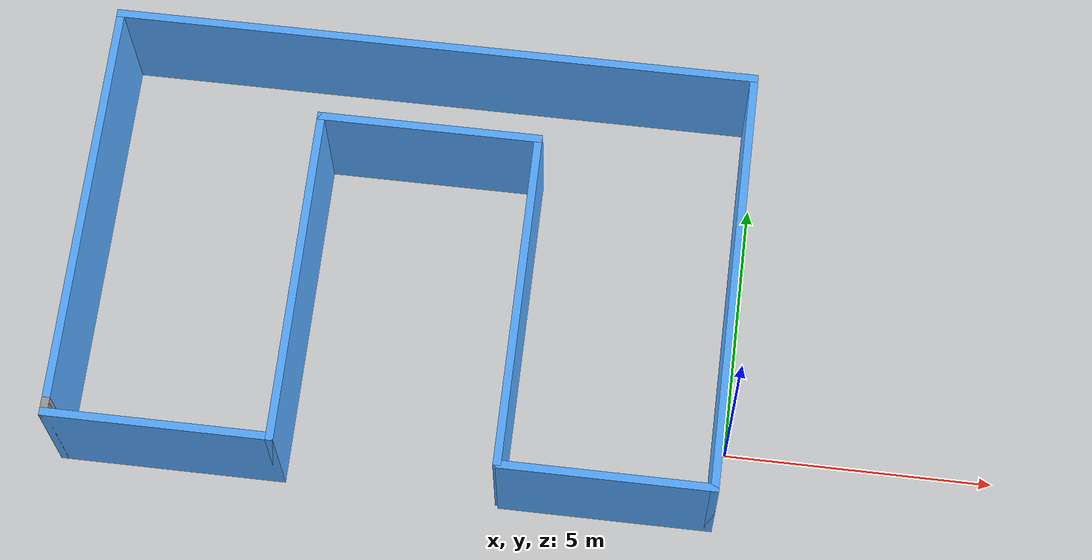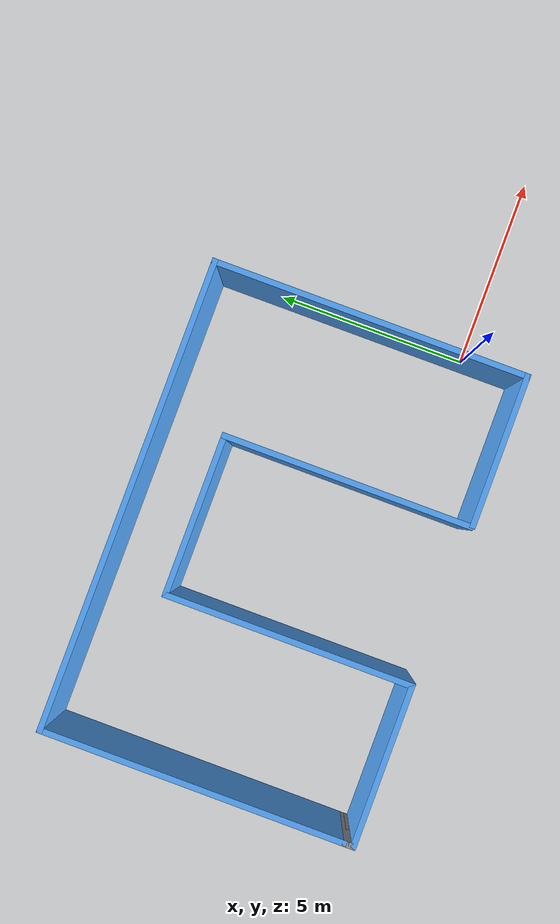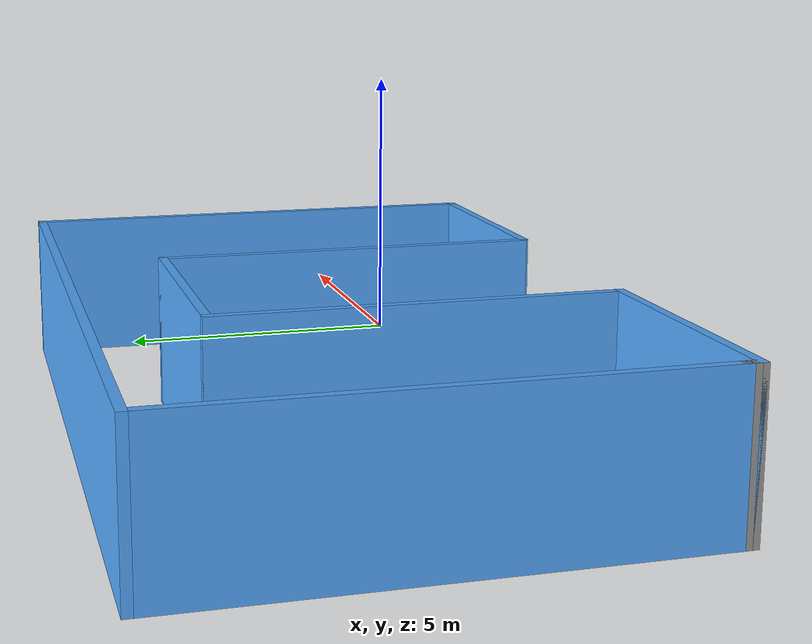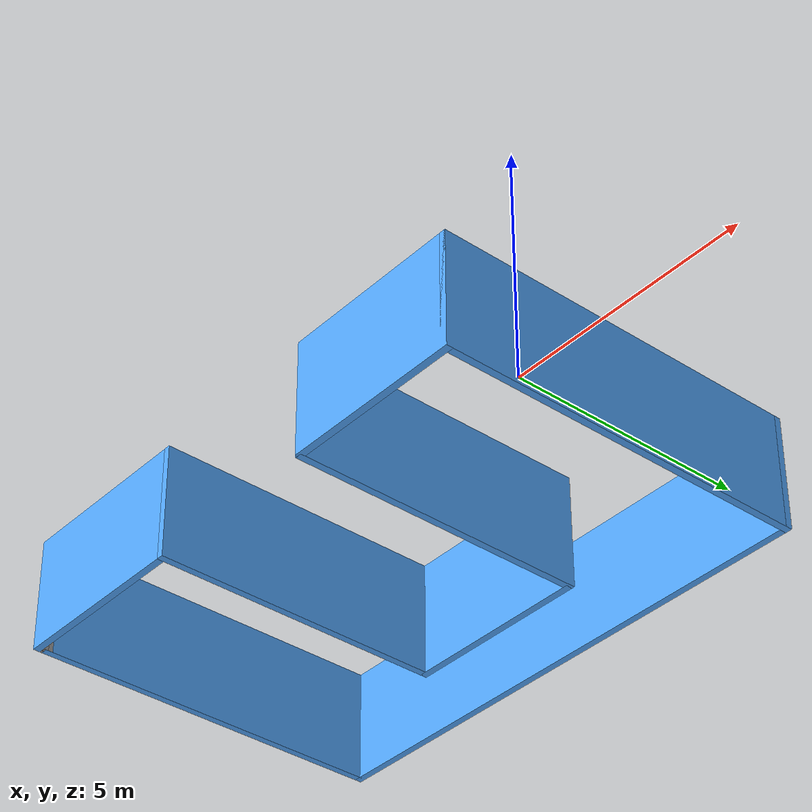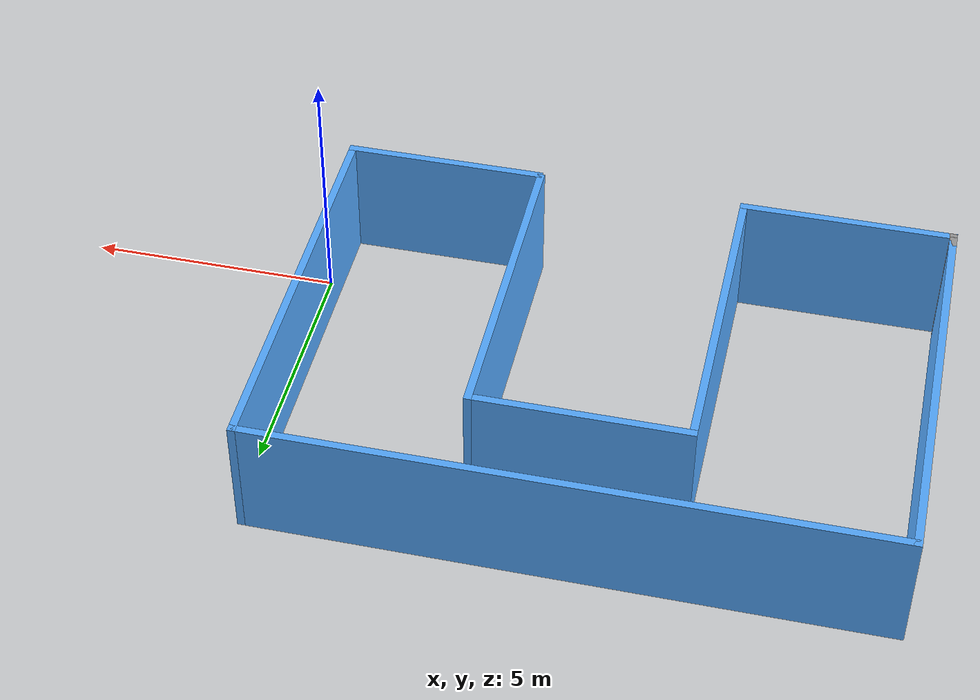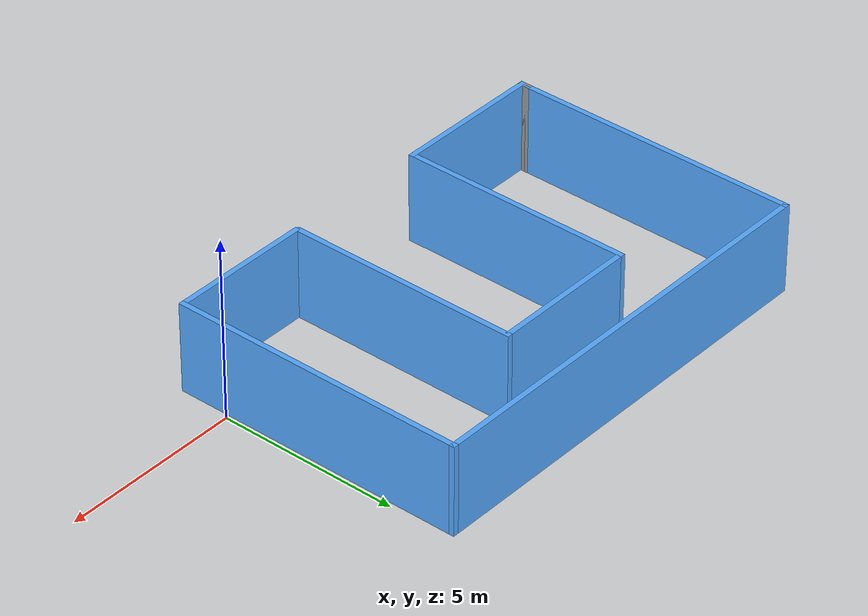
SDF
<?xml version='1.0'?>
<sdf version='1.6'>
  <model name='world'>
    <pose frame=''>-6.24 2.63 0 0 -0 0</pose>
    <link name='Wall_0'>
      <collision name='Wall_0_Collision'>
        <geometry>
          <box>
            <size>4 0.15 2.5</size>
          </box>
        </geometry>
        <pose frame=''>0 0 1.25 0 -0 0</pose>
      </collision>
      <visual name='Wall_0_Visual'>
        <pose frame=''>0 0 1.25 0 -0 0</pose>
        <geometry>
          <box>
            <size>4 0.15 2.5</size>
          </box>
        </geometry>
        <material>
          <script>
            <uri>file://media/materials/scripts/gazebo.material</uri>
            <name>Gazebo/Grey</name>
          </script>
          <ambient>0.333333 0.666667 1 1</ambient>
        </material>
        <meta>
          <layer>0</layer>
        </meta>
      </visual>
      <pose frame=''>4.125 -4.05 0 0 -0 0</pose>
    </link>
    <link name='Wall_10'>
      <collision name='Wall_10_Collision'>
        <geometry>
          <box>
            <size>6.5 0.15 2.5</size>
          </box>
        </geometry>
        <pose frame=''>0 0 1.25 0 -0 0</pose>
      </collision>
      <visual name='Wall_10_Visual'>
        <pose frame=''>0 0 1.25 0 -0 0</pose>
        <geometry>
          <box>
            <size>6.5 0.15 2.5</size>
          </box>
        </geometry>
        <material>
          <script>
            <uri>file://media/materials/scripts/gazebo.material</uri>
            <name>Gazebo/Grey</name>
          </script>
          <ambient>0.333333 0.666667 1 1</ambient>
        </material>
        <meta>
          <layer>0</layer>
        </meta>
      </visual>
      <pose frame=''>2.15 -0.825 0 0 0 -1.5708</pose>
    </link>
    <link name='Wall_2'>
      <collision name='Wall_2_Collision'>
        <geometry>
          <box>
            <size>8.25 0.15 2.5</size>
          </box>
        </geometry>
        <pose frame=''>0 0 1.25 0 -0 0</pose>
      </collision>
      <visual name='Wall_2_Visual'>
        <pose frame=''>0 0 1.25 0 -0 0</pose>
        <geometry>
          <box>
            <size>8.25 0.15 2.5</size>
          </box>
        </geometry>
        <material>
          <script>
            <uri>file://media/materials/scripts/gazebo.material</uri>
            <name>Gazebo/Grey</name>
          </script>
          <ambient>0.333333 0.666667 1 1</ambient>
        </material>
        <meta>
          <layer>0</layer>
        </meta>
      </visual>
      <pose frame=''>6.05 0 0 0 -0 1.5708</pose>
    </link>
    <link name='Wall_3'>
      <collision name='Wall_3_Collision'>
        <geometry>
          <box>
            <size>12.25 0.15 2.5</size>
          </box>
        </geometry>
        <pose frame=''>0 0 1.25 0 -0 0</pose>
      </collision>
      <visual name='Wall_3_Visual'>
        <pose frame=''>0 0 1.25 0 -0 0</pose>
        <geometry>
          <box>
            <size>12.25 0.15 2.5</size>
          </box>
        </geometry>
        <material>
          <script>
            <uri>file://media/materials/scripts/gazebo.material</uri>
            <name>Gazebo/Grey</name>
          </script>
          <ambient>0.333333 0.666667 1 1</ambient>
        </material>
        <meta>
          <layer>0</layer>
        </meta>
      </visual>
      <pose frame=''>0 4.05 0 0 -0 3.14159</pose>
    </link>
    <link name='Wall_4'>
      <collision name='Wall_4_Collision'>
        <geometry>
          <box>
            <size>8 0.15 2.5</size>
          </box>
        </geometry>
        <pose frame=''>0 0 1.25 0 -0 0</pose>
      </collision>
      <visual name='Wall_4_Visual'>
        <pose frame=''>0 0 1.25 0 -0 0</pose>
        <geometry>
          <box>
            <size>8 0.15 2.5</size>
          </box>
        </geometry>
        <material>
          <script>
            <uri>file://media/materials/scripts/gazebo.material</uri>
            <name>Gazebo/Grey</name>
          </script>
          <ambient>0.333333 0.666667 1 1</ambient>
        </material>
        <meta>
          <layer>0</layer>
        </meta>
      </visual>
      <pose frame=''>-6.05 0.125 0 0 0 -1.5708</pose>
    </link>
    <link name='Wall_5'>
      <collision name='Wall_5_Collision'>
        <geometry>
          <box>
            <size>0.25 0.15 2.5</size>
          </box>
        </geometry>
        <pose frame=''>0 0 1.25 0 -0 0</pose>
      </collision>
      <visual name='Wall_5_Visual'>
        <pose frame=''>0 0 1.25 0 -0 0</pose>
        <geometry>
          <box>
            <size>0.25 0.15 2.5</size>
          </box>
        </geometry>
        <material>
          <script>
            <uri>file://media/materials/scripts/gazebo.material</uri>
            <name>Gazebo/Grey</name>
          </script>
          <ambient>1 1 1 1</ambient>
        </material>
        <meta>
          <layer>0</layer>
        </meta>
      </visual>
      <pose frame=''>-6.05 -3.85 0 0 0 -1.5708</pose>
    </link>
    <link name='Wall_6'>
      <collision name='Wall_6_Collision'>
        <geometry>
          <box>
            <size>0.25 0.15 2.5</size>
          </box>
        </geometry>
        <pose frame=''>0 0 1.25 0 -0 0</pose>
      </collision>
      <visual name='Wall_6_Visual'>
        <pose frame=''>0 0 1.25 0 -0 0</pose>
        <geometry>
          <box>
            <size>0.25 0.15 2.5</size>
          </box>
        </geometry>
        <material>
          <script>
            <uri>file://media/materials/scripts/gazebo.material</uri>
            <name>Gazebo/Grey</name>
          </script>
          <ambient>1 1 1 1</ambient>
        </material>
        <meta>
          <layer>0</layer>
        </meta>
      </visual>
      <pose frame=''>-6.05 -3.95 0 0 0 -1.5708</pose>
    </link>
    <link name='Wall_7'>
      <collision name='Wall_7_Collision'>
        <geometry>
          <box>
            <size>4.25 0.15 2.5</size>
          </box>
        </geometry>
        <pose frame=''>0 0 1.25 0 -0 0</pose>
      </collision>
      <visual name='Wall_7_Visual'>
        <pose frame=''>0 0 1.25 0 -0 0</pose>
        <geometry>
          <box>
            <size>4.25 0.15 2.5</size>
          </box>
        </geometry>
        <material>
          <script>
            <uri>file://media/materials/scripts/gazebo.material</uri>
            <name>Gazebo/Grey</name>
          </script>
          <ambient>0.333333 0.666667 1 1</ambient>
        </material>
        <meta>
          <layer>0</layer>
        </meta>
      </visual>
      <pose frame=''>-4 -4 0 0 -0 0</pose>
    </link>
    <link name='Wall_8'>
      <collision name='Wall_8_Collision'>
        <geometry>
          <box>
            <size>6.5 0.15 2.5</size>
          </box>
        </geometry>
        <pose frame=''>0 0 1.25 0 -0 0</pose>
      </collision>
      <visual name='Wall_8_Visual'>
        <pose frame=''>0 0 1.25 0 -0 0</pose>
        <geometry>
          <box>
            <size>6.5 0.15 2.5</size>
          </box>
        </geometry>
        <material>
          <script>
            <uri>file://media/materials/scripts/gazebo.material</uri>
            <name>Gazebo/Grey</name>
          </script>
          <ambient>0.333333 0.666667 1 1</ambient>
        </material>
        <meta>
          <layer>0</layer>
        </meta>
      </visual>
      <pose frame=''>-1.95 -0.825 0 0 -0 1.5708</pose>
    </link>
    <link name='Wall_9'>
      <collision name='Wall_9_Collision'>
        <geometry>
          <box>
            <size>4.25 0.15 2.5</size>
          </box>
        </geometry>
        <pose frame=''>0 0 1.25 0 -0 0</pose>
      </collision>
      <visual name='Wall_9_Visual'>
        <pose frame=''>0 0 1.25 0 -0 0</pose>
        <geometry>
          <box>
            <size>4.25 0.15 2.5</size>
          </box>
        </geometry>
        <material>
          <script>
            <uri>file://media/materials/scripts/gazebo.material</uri>
            <name>Gazebo/Grey</name>
          </script>
          <ambient>0.333333 0.666667 1 1</ambient>
        </material>
        <meta>
          <layer>0</layer>
        </meta>
      </visual>
      <pose frame=''>0.1 2.35 0 0 -0 0</pose>
    </link>
    <static>1</static>
  </model>
</sdf>
